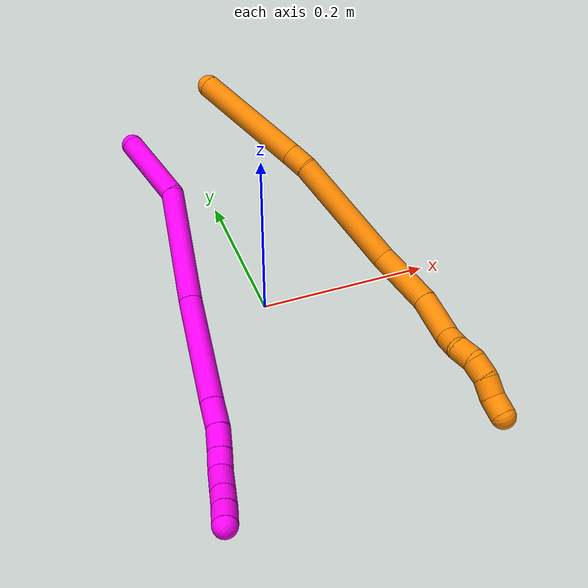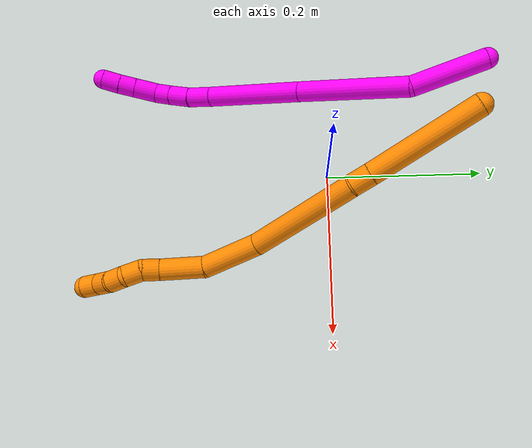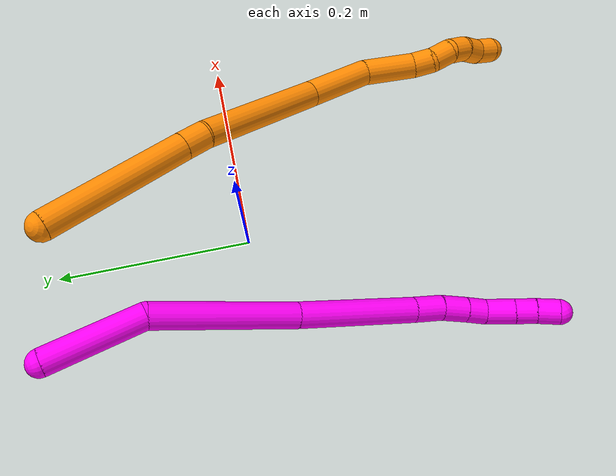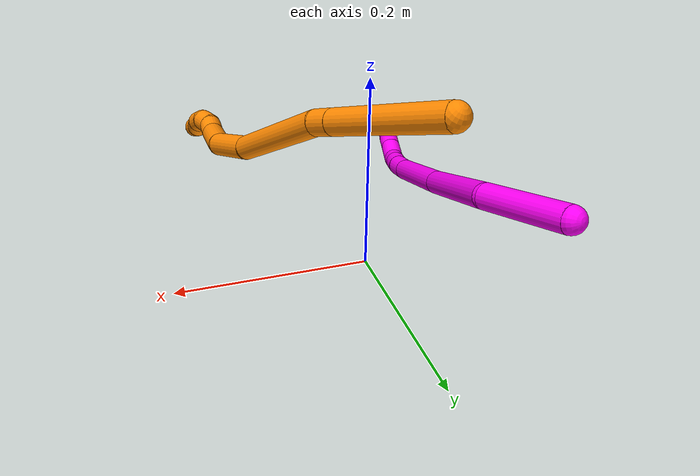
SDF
<sdf version="1.7">
 <world name="default">
  <model name="10">
   <static>0</static>
   <link name="10">
    <collision name="collision-cylinder-e_1_1_4">
     <pose>0.002804 -0.003053 -0.045555 3.07466 0.061333 1.48354</pose>
     <geometry><cylinder><radius>0.0125</radius><length>0.091487</length></cylinder></geometry>
     <surface>
      <friction><ode><mu>1.16</mu><mu2>1.16</mu2><slip1>0</slip1><slip2>0</slip2></ode></friction>
      <contact><ode><kp>1e+06</kp><kd>1</kd><max_vel>0</max_vel><min_depth>0.001</min_depth></ode></contact>
     </surface>
    </collision>
    <visual name="visual-cylinder-e_1_1_4">
     <pose>0.002804 -0.003053 -0.045555 3.07466 0.061333 1.48354</pose>
     <geometry><cylinder><radius>0.0125</radius><length>0.091487</length></cylinder></geometry>
     <material><ambient>1 0 0.964706 1</ambient></material>
    </visual>
    <collision name="collision-cylinder-e_2_4_5">
     <pose>-0.01399 -0.027342 -0.154756 2.81956 -0.284182 -1.44417</pose>
     <geometry><cylinder><radius>0.0125</radius><length>0.139796</length></cylinder></geometry>
     <surface>
      <friction><ode><mu>1.16</mu><mu2>1.16</mu2><slip1>0</slip1><slip2>0</slip2></ode></friction>
      <contact><ode><kp>1e+06</kp><kd>1</kd><max_vel>0</max_vel><min_depth>0.001</min_depth></ode></contact>
     </surface>
    </collision>
    <visual name="visual-cylinder-e_2_4_5">
     <pose>-0.01399 -0.027342 -0.154756 2.81956 -0.284182 -1.44417</pose>
     <geometry><cylinder><radius>0.0125</radius><length>0.139796</length></cylinder></geometry>
     <material><ambient>1 0 0.964706 1</ambient></material>
    </visual>
    <collision name="collision-cylinder-e_3_5_6">
     <pose>-0.04693 -0.067225 -0.274014 2.81806 -0.223666 -1.20546</pose>
     <geometry><cylinder><radius>0.0125</radius><length>0.120309</length></cylinder></geometry>
     <surface>
      <friction><ode><mu>1.16</mu><mu2>1.16</mu2><slip1>0</slip1><slip2>0</slip2></ode></friction>
      <contact><ode><kp>1e+06</kp><kd>1</kd><max_vel>0</max_vel><min_depth>0.001</min_depth></ode></contact>
     </surface>
    </collision>
    <visual name="visual-cylinder-e_3_5_6">
     <pose>-0.04693 -0.067225 -0.274014 2.81806 -0.223666 -1.20546</pose>
     <geometry><cylinder><radius>0.0125</radius><length>0.120309</length></cylinder></geometry>
     <material><ambient>1 0 0.964706 1</ambient></material>
    </visual>
    <collision name="collision-cylinder-e_4_6_7">
     <pose>-0.062432 -0.091032 -0.343406 2.78331 -0.145704 -0.76622</pose>
     <geometry><cylinder><radius>0.0125</radius><length>0.029742</length></cylinder></geometry>
     <surface>
      <friction><ode><mu>1.16</mu><mu2>1.16</mu2><slip1>0</slip1><slip2>0</slip2></ode></friction>
      <contact><ode><kp>1e+06</kp><kd>1</kd><max_vel>0</max_vel><min_depth>0.001</min_depth></ode></contact>
     </surface>
    </collision>
    <visual name="visual-cylinder-e_4_6_7">
     <pose>-0.062432 -0.091032 -0.343406 2.78331 -0.145704 -0.76622</pose>
     <geometry><cylinder><radius>0.0125</radius><length>0.029742</length></cylinder></geometry>
     <material><ambient>1 0 0.964706 1</ambient></material>
    </visual>
    <collision name="collision-cylinder-e_5_7_8">
     <pose>-0.067396 -0.102087 -0.368397 2.65748 -0.217936 -0.83421</pose>
     <geometry><cylinder><radius>0.0125</radius><length>0.025948</length></cylinder></geometry>
     <surface>
      <friction><ode><mu>1.16</mu><mu2>1.16</mu2><slip1>0</slip1><slip2>0</slip2></ode></friction>
      <contact><ode><kp>1e+06</kp><kd>1</kd><max_vel>0</max_vel><min_depth>0.001</min_depth></ode></contact>
     </surface>
    </collision>
    <visual name="visual-cylinder-e_5_7_8">
     <pose>-0.067396 -0.102087 -0.368397 2.65748 -0.217936 -0.83421</pose>
     <geometry><cylinder><radius>0.0125</radius><length>0.025948</length></cylinder></geometry>
     <material><ambient>1 0 0.964706 1</ambient></material>
    </visual>
    <collision name="collision-cylinder-e_6_8_9">
     <pose>-0.072638 -0.113028 -0.388651 2.63271 -0.231199 -0.839827</pose>
     <geometry><cylinder><radius>0.0125</radius><length>0.021274</length></cylinder></geometry>
     <surface>
      <friction><ode><mu>1.16</mu><mu2>1.16</mu2><slip1>0</slip1><slip2>0</slip2></ode></friction>
      <contact><ode><kp>1e+06</kp><kd>1</kd><max_vel>0</max_vel><min_depth>0.001</min_depth></ode></contact>
     </surface>
    </collision>
    <visual name="visual-cylinder-e_6_8_9">
     <pose>-0.072638 -0.113028 -0.388651 2.63271 -0.231199 -0.839827</pose>
     <geometry><cylinder><radius>0.0125</radius><length>0.021274</length></cylinder></geometry>
     <material><ambient>1 0 0.964706 1</ambient></material>
    </visual>
    <collision name="collision-cylinder-e_7_9_10">
     <pose>-0.073109 -0.127284 -0.408956 2.45606 0.134384 0.372771</pose>
     <geometry><cylinder><radius>0.0125</radius><length>0.029366</length></cylinder></geometry>
     <surface>
      <friction><ode><mu>1.16</mu><mu2>1.16</mu2><slip1>0</slip1><slip2>0</slip2></ode></friction>
      <contact><ode><kp>1e+06</kp><kd>1</kd><max_vel>0</max_vel><min_depth>0.001</min_depth></ode></contact>
     </surface>
    </collision>
    <visual name="visual-cylinder-e_7_9_10">
     <pose>-0.073109 -0.127284 -0.408956 2.45606 0.134384 0.372771</pose>
     <geometry><cylinder><radius>0.0125</radius><length>0.029366</length></cylinder></geometry>
     <material><ambient>1 0 0.964706 1</ambient></material>
    </visual>
    <collision name="collision-cylinder-e_8_10_11">
     <pose>-0.069777 -0.142896 -0.428043 2.45596 0.134227 0.372284</pose>
     <geometry><cylinder><radius>0.0125</radius><length>0.020399</length></cylinder></geometry>
     <surface>
      <friction><ode><mu>1.16</mu><mu2>1.16</mu2><slip1>0</slip1><slip2>0</slip2></ode></friction>
      <contact><ode><kp>1e+06</kp><kd>1</kd><max_vel>0</max_vel><min_depth>0.001</min_depth></ode></contact>
     </surface>
    </collision>
    <visual name="visual-cylinder-e_8_10_11">
     <pose>-0.069777 -0.142896 -0.428043 2.45596 0.134227 0.372284</pose>
     <geometry><cylinder><radius>0.0125</radius><length>0.020399</length></cylinder></geometry>
     <material><ambient>1 0 0.964706 1</ambient></material>
    </visual>
    <collision name="collision-cylinder-e_9_11_2">
     <pose>-0.067319 -0.156465 -0.443922 2.41435 0.10097 0.264011</pose>
     <geometry><cylinder><radius>0.0125</radius><length>0.021679</length></cylinder></geometry>
     <surface>
      <friction><ode><mu>1.16</mu><mu2>1.16</mu2><slip1>0</slip1><slip2>0</slip2></ode></friction>
      <contact><ode><kp>1e+06</kp><kd>1</kd><max_vel>0</max_vel><min_depth>0.001</min_depth></ode></contact>
     </surface>
    </collision>
    <visual name="visual-cylinder-e_9_11_2">
     <pose>-0.067319 -0.156465 -0.443922 2.41435 0.10097 0.264011</pose>
     <geometry><cylinder><radius>0.0125</radius><length>0.021679</length></cylinder></geometry>
     <material><ambient>1 0 0.964706 1</ambient></material>
    </visual>
    <collision name="collision-sphere-2">
     <pose>-0.066226 -0.163634 -0.451978 0 -0 0</pose>
     <geometry><sphere><radius>0.0125</radius></sphere></geometry>
     <surface>
      <friction><ode><mu>1.16</mu><mu2>1.16</mu2><slip1>0</slip1><slip2>0</slip2></ode></friction>
      <contact><ode><kp>1e+06</kp><kd>1</kd><max_vel>0</max_vel><min_depth>0.001</min_depth></ode></contact>
     </surface>
    </collision>
    <visual name="visual-sphere-2">
     <pose>-0.066226 -0.163634 -0.451978 0 -0 0</pose>
     <geometry><sphere><radius>0.0125</radius></sphere></geometry>
     <material><ambient>1 0 0.964706 1</ambient></material>
    </visual>
    <collision name="collision-sphere-11">
     <pose>-0.068412 -0.149295 -0.435866 0 -0 0</pose>
     <geometry><sphere><radius>0.0125</radius></sphere></geometry>
     <surface>
      <friction><ode><mu>1.16</mu><mu2>1.16</mu2><slip1>0</slip1><slip2>0</slip2></ode></friction>
      <contact><ode><kp>1e+06</kp><kd>1</kd><max_vel>0</max_vel><min_depth>0.001</min_depth></ode></contact>
     </surface>
    </collision>
    <visual name="visual-sphere-11">
     <pose>-0.068412 -0.149295 -0.435866 0 -0 0</pose>
     <geometry><sphere><radius>0.0125</radius></sphere></geometry>
     <material><ambient>1 0 0.964706 1</ambient></material>
    </visual>
    <collision name="collision-sphere-10">
     <pose>-0.071141 -0.136496 -0.42022 0 -0 0</pose>
     <geometry><sphere><radius>0.0125</radius></sphere></geometry>
     <surface>
      <friction><ode><mu>1.16</mu><mu2>1.16</mu2><slip1>0</slip1><slip2>0</slip2></ode></friction>
      <contact><ode><kp>1e+06</kp><kd>1</kd><max_vel>0</max_vel><min_depth>0.001</min_depth></ode></contact>
     </surface>
    </collision>
    <visual name="visual-sphere-10">
     <pose>-0.071141 -0.136496 -0.42022 0 -0 0</pose>
     <geometry><sphere><radius>0.0125</radius></sphere></geometry>
     <material><ambient>1 0 0.964706 1</ambient></material>
    </visual>
    <collision name="collision-sphere-9">
     <pose>-0.075076 -0.118072 -0.397693 0 -0 0</pose>
     <geometry><sphere><radius>0.0125</radius></sphere></geometry>
     <surface>
      <friction><ode><mu>1.16</mu><mu2>1.16</mu2><slip1>0</slip1><slip2>0</slip2></ode></friction>
      <contact><ode><kp>1e+06</kp><kd>1</kd><max_vel>0</max_vel><min_depth>0.001</min_depth></ode></contact>
     </surface>
    </collision>
    <visual name="visual-sphere-9">
     <pose>-0.075076 -0.118072 -0.397693 0 -0 0</pose>
     <geometry><sphere><radius>0.0125</radius></sphere></geometry>
     <material><ambient>1 0 0.964706 1</ambient></material>
    </visual>
    <collision name="collision-sphere-4">
     <pose>0.005608 -0.006107 -0.091111 0 -0 0</pose>
     <geometry><sphere><radius>0.0125</radius></sphere></geometry>
     <surface>
      <friction><ode><mu>1.16</mu><mu2>1.16</mu2><slip1>0</slip1><slip2>0</slip2></ode></friction>
      <contact><ode><kp>1e+06</kp><kd>1</kd><max_vel>0</max_vel><min_depth>0.001</min_depth></ode></contact>
     </surface>
    </collision>
    <visual name="visual-sphere-4">
     <pose>0.005608 -0.006107 -0.091111 0 -0 0</pose>
     <geometry><sphere><radius>0.0125</radius></sphere></geometry>
     <material><ambient>1 0 0.964706 1</ambient></material>
    </visual>
    <collision name="collision-sphere-1">
     <geometry><sphere><radius>0.0125</radius></sphere></geometry>
     <surface>
      <friction><ode><mu>1.16</mu><mu2>1.16</mu2><slip1>0</slip1><slip2>0</slip2></ode></friction>
      <contact><ode><kp>1e+06</kp><kd>1</kd><max_vel>0</max_vel><min_depth>0.001</min_depth></ode></contact>
     </surface>
    </collision>
    <visual name="visual-sphere-1">
     <geometry><sphere><radius>0.0125</radius></sphere></geometry>
     <material><ambient>1 0 0.964706 1</ambient></material>
    </visual>
    <collision name="collision-sphere-8">
     <pose>-0.070201 -0.107983 -0.379609 0 -0 0</pose>
     <geometry><sphere><radius>0.0125</radius></sphere></geometry>
     <surface>
      <friction><ode><mu>1.16</mu><mu2>1.16</mu2><slip1>0</slip1><slip2>0</slip2></ode></friction>
      <contact><ode><kp>1e+06</kp><kd>1</kd><max_vel>0</max_vel><min_depth>0.001</min_depth></ode></contact>
     </surface>
    </collision>
    <visual name="visual-sphere-8">
     <pose>-0.070201 -0.107983 -0.379609 0 -0 0</pose>
     <geometry><sphere><radius>0.0125</radius></sphere></geometry>
     <material><ambient>1 0 0.964706 1</ambient></material>
    </visual>
    <collision name="collision-sphere-5">
     <pose>-0.033587 -0.048577 -0.218402 0 -0 0</pose>
     <geometry><sphere><radius>0.0125</radius></sphere></geometry>
     <surface>
      <friction><ode><mu>1.16</mu><mu2>1.16</mu2><slip1>0</slip1><slip2>0</slip2></ode></friction>
      <contact><ode><kp>1e+06</kp><kd>1</kd><max_vel>0</max_vel><min_depth>0.001</min_depth></ode></contact>
     </surface>
    </collision>
    <visual name="visual-sphere-5">
     <pose>-0.033587 -0.048577 -0.218402 0 -0 0</pose>
     <geometry><sphere><radius>0.0125</radius></sphere></geometry>
     <material><ambient>1 0 0.964706 1</ambient></material>
    </visual>
    <collision name="collision-sphere-6">
     <pose>-0.060272 -0.085873 -0.329627 0 -0 0</pose>
     <geometry><sphere><radius>0.0125</radius></sphere></geometry>
     <surface>
      <friction><ode><mu>1.16</mu><mu2>1.16</mu2><slip1>0</slip1><slip2>0</slip2></ode></friction>
      <contact><ode><kp>1e+06</kp><kd>1</kd><max_vel>0</max_vel><min_depth>0.001</min_depth></ode></contact>
     </surface>
    </collision>
    <visual name="visual-sphere-6">
     <pose>-0.060272 -0.085873 -0.329627 0 -0 0</pose>
     <geometry><sphere><radius>0.0125</radius></sphere></geometry>
     <material><ambient>1 0 0.964706 1</ambient></material>
    </visual>
    <collision name="collision-sphere-7">
     <pose>-0.064591 -0.096192 -0.357185 0 -0 0</pose>
     <geometry><sphere><radius>0.0125</radius></sphere></geometry>
     <surface>
      <friction><ode><mu>1.16</mu><mu2>1.16</mu2><slip1>0</slip1><slip2>0</slip2></ode></friction>
      <contact><ode><kp>1e+06</kp><kd>1</kd><max_vel>0</max_vel><min_depth>0.001</min_depth></ode></contact>
     </surface>
    </collision>
    <visual name="visual-sphere-7">
     <pose>-0.064591 -0.096192 -0.357185 0 -0 0</pose>
     <geometry><sphere><radius>0.0125</radius></sphere></geometry>
     <material><ambient>1 0 0.964706 1</ambient></material>
    </visual>
    <inertial>
     <pose>-0.035052 -0.05999 -0.234348 0 -0 0</pose>
     <mass>0.5</mass>
     <inertia>
      <ixx>-0.000202</ixx>
      <ixy>0</ixy>
      <ixz>0</ixz>
      <iyy>-0.00037</iyy>
      <iyz>0</iyz>
      <izz>0.000189</izz>
     </inertia>
    </inertial>
   </link>
   <pose>-0.099133 0.183167 0.132879 -1.02239 -0.995028 -0.171551</pose>
  </model>
  <model name="19">
   <static>0</static>
   <link name="19">
    <collision name="collision-cylinder-e_1_1_4">
     <pose>0.013555 -0.041111 -0.048351 2.43695 0.210408 0.55935</pose>
     <geometry><cylinder><radius>0.0125</radius><length>0.129796</length></cylinder></geometry>
     <surface>
      <friction><ode><mu>1.16</mu><mu2>1.16</mu2><slip1>0</slip1><slip2>0</slip2></ode></friction>
      <contact><ode><kp>1e+06</kp><kd>1</kd><max_vel>0</max_vel><min_depth>0.001</min_depth></ode></contact>
     </surface>
    </collision>
    <visual name="visual-cylinder-e_1_1_4">
     <pose>0.013555 -0.041111 -0.048351 2.43695 0.210408 0.55935</pose>
     <geometry><cylinder><radius>0.0125</radius><length>0.129796</length></cylinder></geometry>
     <material><ambient>0.996078 0.537255 0 1</ambient></material>
    </visual>
    <collision name="collision-cylinder-e_2_4_5">
     <pose>0.029296 -0.089597 -0.105367 2.43648 0.189885 0.506532</pose>
     <geometry><cylinder><radius>0.0125</radius><length>0.023171</length></cylinder></geometry>
     <surface>
      <friction><ode><mu>1.16</mu><mu2>1.16</mu2><slip1>0</slip1><slip2>0</slip2></ode></friction>
      <contact><ode><kp>1e+06</kp><kd>1</kd><max_vel>0</max_vel><min_depth>0.001</min_depth></ode></contact>
     </surface>
    </collision>
    <visual name="visual-cylinder-e_2_4_5">
     <pose>0.029296 -0.089597 -0.105367 2.43648 0.189885 0.506532</pose>
     <geometry><cylinder><radius>0.0125</radius><length>0.023171</length></cylinder></geometry>
     <material><ambient>0.996078 0.537255 0 1</ambient></material>
    </visual>
    <collision name="collision-cylinder-e_3_5_6">
     <pose>0.039554 -0.128674 -0.169192 2.61994 0.12619 0.46486</pose>
     <geometry><cylinder><radius>0.0125</radius><length>0.128265</length></cylinder></geometry>
     <surface>
      <friction><ode><mu>1.16</mu><mu2>1.16</mu2><slip1>0</slip1><slip2>0</slip2></ode></friction>
      <contact><ode><kp>1e+06</kp><kd>1</kd><max_vel>0</max_vel><min_depth>0.001</min_depth></ode></contact>
     </surface>
    </collision>
    <visual name="visual-cylinder-e_3_5_6">
     <pose>0.039554 -0.128674 -0.169192 2.61994 0.12619 0.46486</pose>
     <geometry><cylinder><radius>0.0125</radius><length>0.128265</length></cylinder></geometry>
     <material><ambient>0.996078 0.537255 0 1</ambient></material>
    </visual>
    <collision name="collision-cylinder-e_4_6_7">
     <pose>0.049935 -0.182745 -0.248247 2.38922 0.070444 0.177943</pose>
     <geometry><cylinder><radius>0.0125</radius><length>0.065624</length></cylinder></geometry>
     <surface>
      <friction><ode><mu>1.16</mu><mu2>1.16</mu2><slip1>0</slip1><slip2>0</slip2></ode></friction>
      <contact><ode><kp>1e+06</kp><kd>1</kd><max_vel>0</max_vel><min_depth>0.001</min_depth></ode></contact>
     </surface>
    </collision>
    <visual name="visual-cylinder-e_4_6_7">
     <pose>0.049935 -0.182745 -0.248247 2.38922 0.070444 0.177943</pose>
     <geometry><cylinder><radius>0.0125</radius><length>0.065624</length></cylinder></geometry>
     <material><ambient>0.996078 0.537255 0 1</ambient></material>
    </visual>
    <collision name="collision-cylinder-e_5_7_8">
     <pose>0.046503 -0.225535 -0.286973 2.19888 -0.223674 -0.433764</pose>
     <geometry><cylinder><radius>0.0125</radius><length>0.051767</length></cylinder></geometry>
     <surface>
      <friction><ode><mu>1.16</mu><mu2>1.16</mu2><slip1>0</slip1><slip2>0</slip2></ode></friction>
      <contact><ode><kp>1e+06</kp><kd>1</kd><max_vel>0</max_vel><min_depth>0.001</min_depth></ode></contact>
     </surface>
    </collision>
    <visual name="visual-cylinder-e_5_7_8">
     <pose>0.046503 -0.225535 -0.286973 2.19888 -0.223674 -0.433764</pose>
     <geometry><cylinder><radius>0.0125</radius><length>0.051767</length></cylinder></geometry>
     <material><ambient>0.996078 0.537255 0 1</ambient></material>
    </visual>
    <collision name="collision-cylinder-e_6_8_9">
     <pose>0.038844 -0.255337 -0.305158 1.91423 -0.190176 -0.269159</pose>
     <geometry><cylinder><radius>0.0125</radius><length>0.020291</length></cylinder></geometry>
     <surface>
      <friction><ode><mu>1.16</mu><mu2>1.16</mu2><slip1>0</slip1><slip2>0</slip2></ode></friction>
      <contact><ode><kp>1e+06</kp><kd>1</kd><max_vel>0</max_vel><min_depth>0.001</min_depth></ode></contact>
     </surface>
    </collision>
    <visual name="visual-cylinder-e_6_8_9">
     <pose>0.038844 -0.255337 -0.305158 1.91423 -0.190176 -0.269159</pose>
     <geometry><cylinder><radius>0.0125</radius><length>0.020291</length></cylinder></geometry>
     <material><ambient>0.996078 0.537255 0 1</ambient></material>
    </visual>
    <collision name="collision-cylinder-e_7_9_10">
     <pose>0.03779 -0.273449 -0.314037 2.13498 0.083421 0.151306</pose>
     <geometry><cylinder><radius>0.0125</radius><length>0.020736</length></cylinder></geometry>
     <surface>
      <friction><ode><mu>1.16</mu><mu2>1.16</mu2><slip1>0</slip1><slip2>0</slip2></ode></friction>
      <contact><ode><kp>1e+06</kp><kd>1</kd><max_vel>0</max_vel><min_depth>0.001</min_depth></ode></contact>
     </surface>
    </collision>
    <visual name="visual-cylinder-e_7_9_10">
     <pose>0.03779 -0.273449 -0.314037 2.13498 0.083421 0.151306</pose>
     <geometry><cylinder><radius>0.0125</radius><length>0.020736</length></cylinder></geometry>
     <material><ambient>0.996078 0.537255 0 1</ambient></material>
    </visual>
    <collision name="collision-cylinder-e_8_10_11">
     <pose>0.038291 -0.28782 -0.327872 2.54525 -0.03616 -0.117534</pose>
     <geometry><cylinder><radius>0.0125</radius><length>0.020099</length></cylinder></geometry>
     <surface>
      <friction><ode><mu>1.16</mu><mu2>1.16</mu2><slip1>0</slip1><slip2>0</slip2></ode></friction>
      <contact><ode><kp>1e+06</kp><kd>1</kd><max_vel>0</max_vel><min_depth>0.001</min_depth></ode></contact>
     </surface>
    </collision>
    <visual name="visual-cylinder-e_8_10_11">
     <pose>0.038291 -0.28782 -0.327872 2.54525 -0.03616 -0.117534</pose>
     <geometry><cylinder><radius>0.0125</radius><length>0.020099</length></cylinder></geometry>
     <material><ambient>0.996078 0.537255 0 1</ambient></material>
    </visual>
    <collision name="collision-cylinder-e_9_11_12">
     <pose>0.035708 -0.297169 -0.345301 2.75537 -0.221723 -1.03502</pose>
     <geometry><cylinder><radius>0.0125</radius><length>0.020183</length></cylinder></geometry>
     <surface>
      <friction><ode><mu>1.16</mu><mu2>1.16</mu2><slip1>0</slip1><slip2>0</slip2></ode></friction>
      <contact><ode><kp>1e+06</kp><kd>1</kd><max_vel>0</max_vel><min_depth>0.001</min_depth></ode></contact>
     </surface>
    </collision>
    <visual name="visual-cylinder-e_9_11_12">
     <pose>0.035708 -0.297169 -0.345301 2.75537 -0.221723 -1.03502</pose>
     <geometry><cylinder><radius>0.0125</radius><length>0.020183</length></cylinder></geometry>
     <material><ambient>0.996078 0.537255 0 1</ambient></material>
    </visual>
    <collision name="collision-cylinder-e_10_12_2">
     <pose>0.031926 -0.307114 -0.362124 2.4611 -0.156348 -0.435529</pose>
     <geometry><cylinder><radius>0.0125</radius><length>0.020069</length></cylinder></geometry>
     <surface>
      <friction><ode><mu>1.16</mu><mu2>1.16</mu2><slip1>0</slip1><slip2>0</slip2></ode></friction>
      <contact><ode><kp>1e+06</kp><kd>1</kd><max_vel>0</max_vel><min_depth>0.001</min_depth></ode></contact>
     </surface>
    </collision>
    <visual name="visual-cylinder-e_10_12_2">
     <pose>0.031926 -0.307114 -0.362124 2.4611 -0.156348 -0.435529</pose>
     <geometry><cylinder><radius>0.0125</radius><length>0.020069</length></cylinder></geometry>
     <material><ambient>0.996078 0.537255 0 1</ambient></material>
    </visual>
    <collision name="collision-sphere-2">
     <pose>0.030364 -0.31335 -0.369828 0 -0 0</pose>
     <geometry><sphere><radius>0.0125</radius></sphere></geometry>
     <surface>
      <friction><ode><mu>1.16</mu><mu2>1.16</mu2><slip1>0</slip1><slip2>0</slip2></ode></friction>
      <contact><ode><kp>1e+06</kp><kd>1</kd><max_vel>0</max_vel><min_depth>0.001</min_depth></ode></contact>
     </surface>
    </collision>
    <visual name="visual-sphere-2">
     <pose>0.030364 -0.31335 -0.369828 0 -0 0</pose>
     <geometry><sphere><radius>0.0125</radius></sphere></geometry>
     <material><ambient>0.996078 0.537255 0 1</ambient></material>
    </visual>
    <collision name="collision-sphere-12">
     <pose>0.033489 -0.300877 -0.35442 0 -0 0</pose>
     <geometry><sphere><radius>0.0125</radius></sphere></geometry>
     <surface>
      <friction><ode><mu>1.16</mu><mu2>1.16</mu2><slip1>0</slip1><slip2>0</slip2></ode></friction>
      <contact><ode><kp>1e+06</kp><kd>1</kd><max_vel>0</max_vel><min_depth>0.001</min_depth></ode></contact>
     </surface>
    </collision>
    <visual name="visual-sphere-12">
     <pose>0.033489 -0.300877 -0.35442 0 -0 0</pose>
     <geometry><sphere><radius>0.0125</radius></sphere></geometry>
     <material><ambient>0.996078 0.537255 0 1</ambient></material>
    </visual>
    <collision name="collision-sphere-11">
     <pose>0.037927 -0.29346 -0.336181 0 -0 0</pose>
     <geometry><sphere><radius>0.0125</radius></sphere></geometry>
     <surface>
      <friction><ode><mu>1.16</mu><mu2>1.16</mu2><slip1>0</slip1><slip2>0</slip2></ode></friction>
      <contact><ode><kp>1e+06</kp><kd>1</kd><max_vel>0</max_vel><min_depth>0.001</min_depth></ode></contact>
     </surface>
    </collision>
    <visual name="visual-sphere-11">
     <pose>0.037927 -0.29346 -0.336181 0 -0 0</pose>
     <geometry><sphere><radius>0.0125</radius></sphere></geometry>
     <material><ambient>0.996078 0.537255 0 1</ambient></material>
    </visual>
    <collision name="collision-sphere-10">
     <pose>0.038654 -0.28218 -0.319562 0 -0 0</pose>
     <geometry><sphere><radius>0.0125</radius></sphere></geometry>
     <surface>
      <friction><ode><mu>1.16</mu><mu2>1.16</mu2><slip1>0</slip1><slip2>0</slip2></ode></friction>
      <contact><ode><kp>1e+06</kp><kd>1</kd><max_vel>0</max_vel><min_depth>0.001</min_depth></ode></contact>
     </surface>
    </collision>
    <visual name="visual-sphere-10">
     <pose>0.038654 -0.28218 -0.319562 0 -0 0</pose>
     <geometry><sphere><radius>0.0125</radius></sphere></geometry>
     <material><ambient>0.996078 0.537255 0 1</ambient></material>
    </visual>
    <collision name="collision-sphere-9">
     <pose>0.036926 -0.264718 -0.308512 0 -0 0</pose>
     <geometry><sphere><radius>0.0125</radius></sphere></geometry>
     <surface>
      <friction><ode><mu>1.16</mu><mu2>1.16</mu2><slip1>0</slip1><slip2>0</slip2></ode></friction>
      <contact><ode><kp>1e+06</kp><kd>1</kd><max_vel>0</max_vel><min_depth>0.001</min_depth></ode></contact>
     </surface>
    </collision>
    <visual name="visual-sphere-9">
     <pose>0.036926 -0.264718 -0.308512 0 -0 0</pose>
     <geometry><sphere><radius>0.0125</radius></sphere></geometry>
     <material><ambient>0.996078 0.537255 0 1</ambient></material>
    </visual>
    <collision name="collision-sphere-4">
     <pose>0.027109 -0.082223 -0.096703 0 -0 0</pose>
     <geometry><sphere><radius>0.0125</radius></sphere></geometry>
     <surface>
      <friction><ode><mu>1.16</mu><mu2>1.16</mu2><slip1>0</slip1><slip2>0</slip2></ode></friction>
      <contact><ode><kp>1e+06</kp><kd>1</kd><max_vel>0</max_vel><min_depth>0.001</min_depth></ode></contact>
     </surface>
    </collision>
    <visual name="visual-sphere-4">
     <pose>0.027109 -0.082223 -0.096703 0 -0 0</pose>
     <geometry><sphere><radius>0.0125</radius></sphere></geometry>
     <material><ambient>0.996078 0.537255 0 1</ambient></material>
    </visual>
    <collision name="collision-sphere-1">
     <geometry><sphere><radius>0.0125</radius></sphere></geometry>
     <surface>
      <friction><ode><mu>1.16</mu><mu2>1.16</mu2><slip1>0</slip1><slip2>0</slip2></ode></friction>
      <contact><ode><kp>1e+06</kp><kd>1</kd><max_vel>0</max_vel><min_depth>0.001</min_depth></ode></contact>
     </surface>
    </collision>
    <visual name="visual-sphere-1">
     <geometry><sphere><radius>0.0125</radius></sphere></geometry>
     <material><ambient>0.996078 0.537255 0 1</ambient></material>
    </visual>
    <collision name="collision-sphere-8">
     <pose>0.040762 -0.245957 -0.301803 0 -0 0</pose>
     <geometry><sphere><radius>0.0125</radius></sphere></geometry>
     <surface>
      <friction><ode><mu>1.16</mu><mu2>1.16</mu2><slip1>0</slip1><slip2>0</slip2></ode></friction>
      <contact><ode><kp>1e+06</kp><kd>1</kd><max_vel>0</max_vel><min_depth>0.001</min_depth></ode></contact>
     </surface>
    </collision>
    <visual name="visual-sphere-8">
     <pose>0.040762 -0.245957 -0.301803 0 -0 0</pose>
     <geometry><sphere><radius>0.0125</radius></sphere></geometry>
     <material><ambient>0.996078 0.537255 0 1</ambient></material>
    </visual>
    <collision name="collision-sphere-5">
     <pose>0.031482 -0.096971 -0.114031 0 -0 0</pose>
     <geometry><sphere><radius>0.0125</radius></sphere></geometry>
     <surface>
      <friction><ode><mu>1.16</mu><mu2>1.16</mu2><slip1>0</slip1><slip2>0</slip2></ode></friction>
      <contact><ode><kp>1e+06</kp><kd>1</kd><max_vel>0</max_vel><min_depth>0.001</min_depth></ode></contact>
     </surface>
    </collision>
    <visual name="visual-sphere-5">
     <pose>0.031482 -0.096971 -0.114031 0 -0 0</pose>
     <geometry><sphere><radius>0.0125</radius></sphere></geometry>
     <material><ambient>0.996078 0.537255 0 1</ambient></material>
    </visual>
    <collision name="collision-sphere-6">
     <pose>0.047625 -0.160378 -0.224352 0 -0 0</pose>
     <geometry><sphere><radius>0.0125</radius></sphere></geometry>
     <surface>
      <friction><ode><mu>1.16</mu><mu2>1.16</mu2><slip1>0</slip1><slip2>0</slip2></ode></friction>
      <contact><ode><kp>1e+06</kp><kd>1</kd><max_vel>0</max_vel><min_depth>0.001</min_depth></ode></contact>
     </surface>
    </collision>
    <visual name="visual-sphere-6">
     <pose>0.047625 -0.160378 -0.224352 0 -0 0</pose>
     <geometry><sphere><radius>0.0125</radius></sphere></geometry>
     <material><ambient>0.996078 0.537255 0 1</ambient></material>
    </visual>
    <collision name="collision-sphere-7">
     <pose>0.052244 -0.205113 -0.272143 0 -0 0</pose>
     <geometry><sphere><radius>0.0125</radius></sphere></geometry>
     <surface>
      <friction><ode><mu>1.16</mu><mu2>1.16</mu2><slip1>0</slip1><slip2>0</slip2></ode></friction>
      <contact><ode><kp>1e+06</kp><kd>1</kd><max_vel>0</max_vel><min_depth>0.001</min_depth></ode></contact>
     </surface>
    </collision>
    <visual name="visual-sphere-7">
     <pose>0.052244 -0.205113 -0.272143 0 -0 0</pose>
     <geometry><sphere><radius>0.0125</radius></sphere></geometry>
     <material><ambient>0.996078 0.537255 0 1</ambient></material>
    </visual>
    <inertial>
     <pose>0.033797 -0.152763 -0.190191 0 -0 0</pose>
     <mass>0.5</mass>
     <inertia>
      <ixx>0.000539</ixx>
      <ixy>0</ixy>
      <ixz>0</ixz>
      <iyy>-0.000122</iyy>
      <iyz>0</iyz>
      <izz>0.000154</izz>
     </inertia>
    </inertial>
   </link>
   <pose>-0.010969 0.147421 0.212963 -0.541178 -0.114763 0.230474</pose>
  </model>
 </world>
</sdf>
